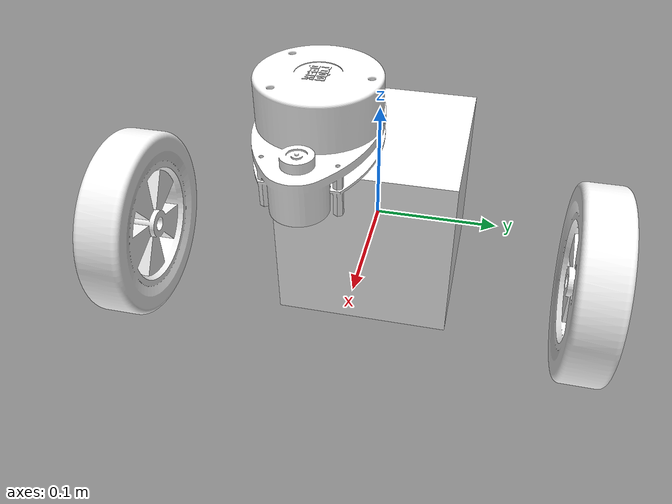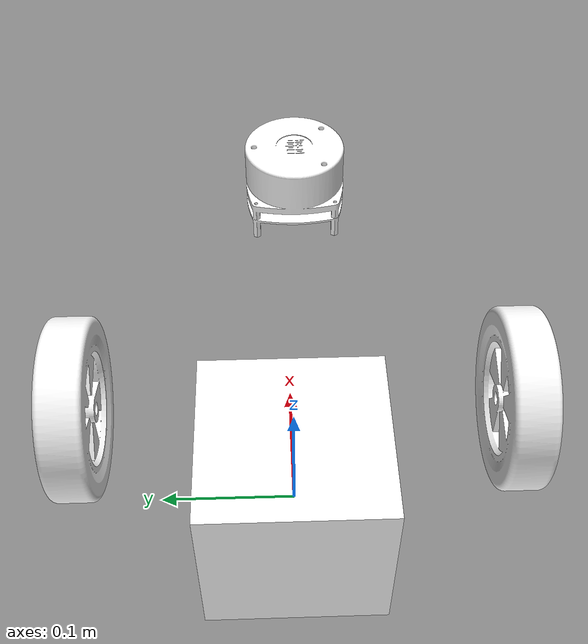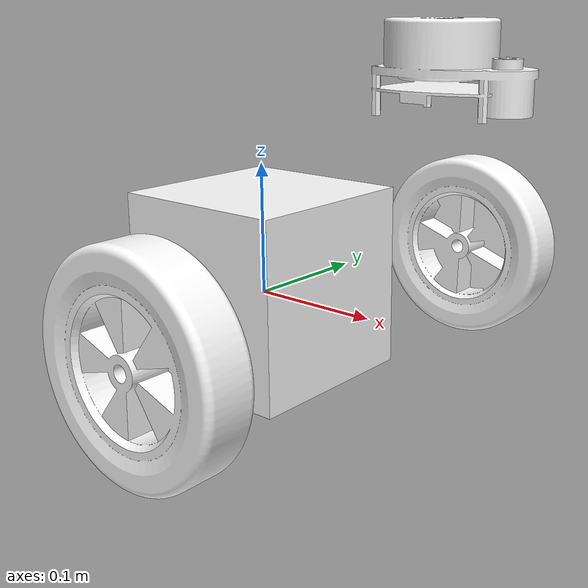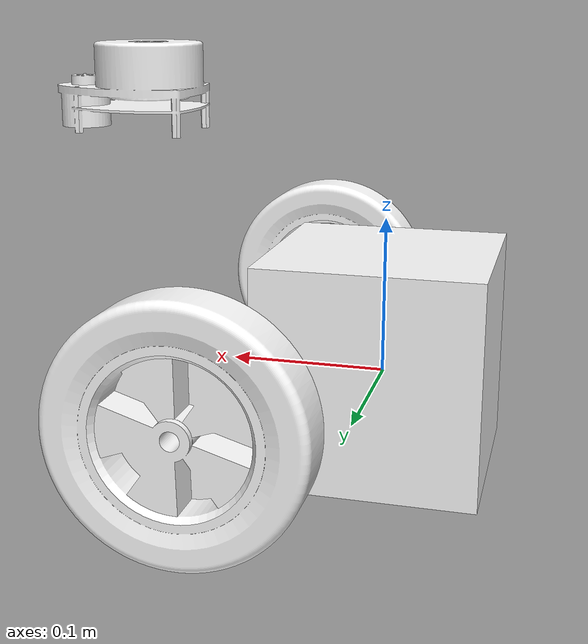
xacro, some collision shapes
<?xml version="1.0" ?>
<robot name="romebot" xmlns:xacro="http://ros.org/wiki/xacro">
  <xacro:include filename="$(find rome_description)/urdf/materials.xacro"/>
  <xacro:include filename="$(find rome_description)/urdf/romebot.gazebo.xacro"/>

  <link name="base_footprint"/>

  <joint name="base_joint" type="fixed">
    <parent link="base_footprint"/>
    <child link="base_link"/>
    <origin xyz="0 0 0.01" rpy="0 0 0"/>
  </joint>

  <link name="base_link">
    <visual>
      <origin xyz="-0.22 -0.21 -0.0735" rpy="1.57 0 1.57"/>
      <geometry>
        <mesh filename="package://rome_description/meshes/ROBOT4.stl" scale="0.001 0.001 0.001"/>
      </geometry>
      <material name="white"/>
    </visual>

    <collision>
      <origin xyz="0 0 0" rpy="0 0 0"/>
      <geometry>
	<box size="0.140 0.140 0.140"/>
      </geometry>
    </collision>

    <inertial>
      <origin xyz="0 0 0" rpy="0 0 0"/>
      <mass value="2"/>
      <inertia
	  ixx="1e-3" ixy="0.0" ixz="0.0"
	  iyy="1e-3" iyz="0.0" izz="1e-3"/>
    </inertial>
  </link>

  <joint name="wheel_left_joint" type="continuous">
    <parent link="base_link"/>
    <child link="wheel_left_link"/>
    <origin xyz="0.08 0.171 0.005" rpy="0 0 0"/>
    <axis xyz="0 1 0"/>
    <dynamics damping="0.0"/>
  </joint>

  <link name="wheel_left_link">
    <visual>
      <origin xyz="0.07 -0.018 -0.072" rpy="0 0 1.57"/>
      <geometry>
        <mesh filename="package://rome_description/meshes/wheel3.stl" scale="0.001 0.001 0.001"/>
      </geometry>
      <material name="white"/>
    </visual>

    <collision>
      <origin xyz="0 0 0" rpy="-1.57 0 0"/>
      <geometry>
	<cylinder length="0.03" radius="0.09"/>
      </geometry>
    </collision>

    <inertial>
      <origin xyz="0 0 0" rpy="0 0 0"/>
      <mass value="0.5"/>
      <inertia
	  ixx="1e-3" ixy="0.0" ixz="0.0"
	  iyy="1e-3" iyz="0.0" izz="1e-3"/>
    </inertial>
  </link>

  <joint name="wheel_right_joint" type="continuous">
    <parent link="base_link"/>
    <child link="wheel_right_link"/>
    <origin xyz="0.08 -0.18 0.005" rpy="0 0 0"/>
    <axis xyz="0 1 0"/>
    <dynamics damping="0.0"/>
  </joint>

  <link name="wheel_right_link">
    <visual>
      <origin xyz="0.07 -0.018 -0.072" rpy="0 0 1.57"/>
      <geometry>
        <mesh filename="package://rome_description/meshes/wheel3.stl" scale="0.001 0.001 0.001"/>
      </geometry>
      <material name="white"/>
    </visual>

    <collision>
      <origin xyz="0 0 0" rpy="-1.57 0 0"/>
      <geometry>
	<cylinder length="0.03" radius="0.09"/>
      </geometry>
    </collision>

    <inertial>
      <origin xyz="0 0 0" rpy="0 0 0"/>
      <mass value="0.5"/>
      <inertia
	  ixx="1e-3" ixy="0.0" ixz="0.0"
	  iyy="1e-3" iyz="0.0" izz="1e-3"/>
    </inertial>
  </link>

  <joint name="imu_joint" type="fixed">
    <origin xyz="0.3435 0.2395 0.15" rpy="0 0 0"/>
    <parent link="base_link"/>
    <child link="imu_link"/>
  </joint>

  <link name="imu_link"/>

  <joint name="scan_joint" type="fixed">
    <parent link="base_link"/>
    <child link="base_scan"/>
    <origin xyz="0.1235 0.0295 0.139" rpy="0 0 0"/>
  </joint>

  <link name="base_scan">
    <visual>
      <origin xyz="0 0 0" rpy="1.57 0 0"/>
      <geometry>
        <mesh filename="package://rome_description/meshes/rplidar.stl" scale="0.001 0.001 0.001"/>
      </geometry>
      <material name="white"/>
    </visual>

    <collision>
      <origin xyz="0 0 0" rpy="0 0 0"/>
      <geometry>
	<cylinder length="0.0315" radius="0.055"/>
      </geometry>
    </collision>

    <inertial>
      <mass value="125e-3" />
      <origin xyz="0 0 0" rpy="0 0 0"/>
      <inertia ixx="1e-3" ixy="0" ixz="0" iyy="1e-3" iyz="0" izz="1e-3" />
    </inertial>
  </link>

</robot>

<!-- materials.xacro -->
<robot>

  <material name="black">
    <color rgba="0.0 0.0 0.0 1.0"/>
  </material>

  <material name="dark">
    <color rgba="0.3 0.3 0.3 1.0"/>
  </material>

  <material name="light_black">
    <color rgba="0.4 0.4 0.4 1.0"/>
  </material>

  <material name="blue">
    <color rgba="0.0 0.0 0.8 1.0"/>
  </material>

  <material name="green">
    <color rgba="0.0 0.8 0.0 1.0"/>
  </material>

  <material name="grey">
    <color rgba="0.2 0.2 0.2 1.0"/>
  </material>

  <material name="orange">
    <color rgba="${255/255} ${108/255} ${10/255} 1.0"/>
  </material>

  <material name="brown">
    <color rgba="${222/255} ${207/255} ${195/255} 1.0"/>
  </material>

  <material name="red">
    <color rgba="0.8 0.0 0.0 1.0"/>
  </material>

  <material name="white">
    <color rgba="1.0 1.0 1.0 1.0"/>
  </material>

</robot>
